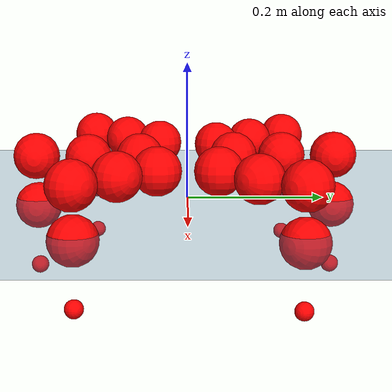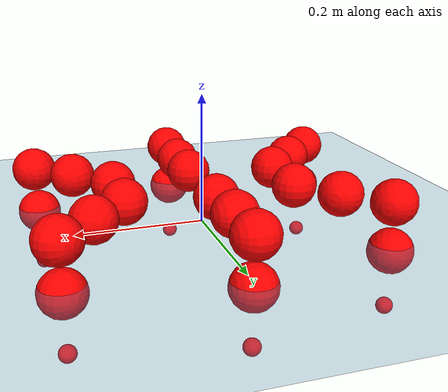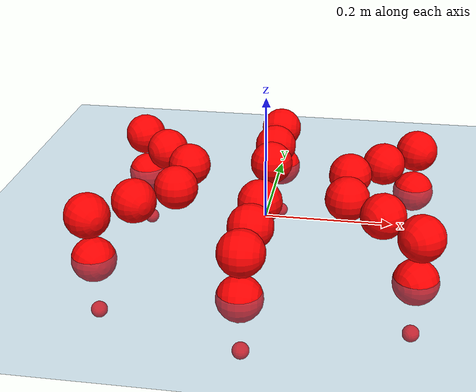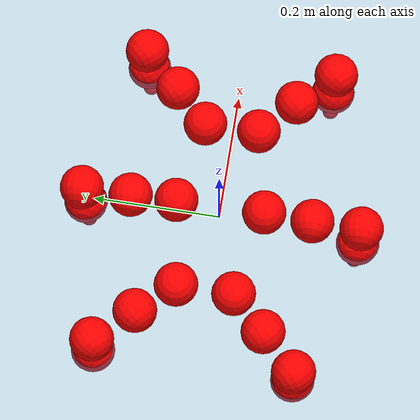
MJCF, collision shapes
<mujoco model="Golem">
  <compiler angle="radian" assetdir="assets" balanceinertia="true" inertiafromgeom="false"/>

  <option timestep="0.005" density="1.2" viscosity="2e-05"/>

  <size nkey="1"/>

  <visual>
    <quality shadowsize="8192"/>
    <map shadowclip="0.5"/>
  </visual>

  <default>
    <default class="/">
      <joint armature="0.01" damping="0.01" frictionloss="0.01"/>
      <geom contype="0" conaffinity="0" group="1" solref="-1000 -80"/>
      <site size="0.01 0.005 0.005" group="5"/>
      <general forcelimited="true" biastype="affine" gainprm="25" biasprm="0 -25 -0.5"/>
      <default class="visual">
        <geom type="mesh" group="2"/>
      </default>
      <default class="collision">
        <geom group="3"/>
      </default>
      <default class="foot">
        <geom size="0.01 0 0" condim="6" group="4" priority="1" solimp="0.015 1 0.01"/>
      </default>
      <default class="reward_collision_sphere">
        <geom group="5" rgba="1 0 0 1"/>
      </default>
    </default>
  </default>

  <asset>
    <texture type="skybox" colorspace="auto" name="//unnamed_texture_0" builtin="gradient" rgb1="0.95 0.95 0.95" rgb2="0.95 0.95 0.95" width="100" height="600"/>
    <texture type="2d" colorspace="auto" name="texplane" builtin="checker" rgb1="0.345 0.575 0.748" rgb2="0.345 0.575 0.748" markrgb="1 1 1" width="512" height="512"/>
    <material name="MatPlane" class="/" texture="texplane" texuniform="true" texrepeat="2 2" specular="0.9"/>
    <mesh name="body" class="/" file="body.stl" scale="0.001 0.001 0.001"/>
    <mesh name="coxa" class="/" file="coxa.stl" scale="0.001 0.001 0.001"/>
    <mesh name="femur" class="/" file="femur.stl" scale="0.001 0.001 0.001"/>
    <mesh name="tibia" class="/" file="tibia.stl" scale="0.001 0.001 0.001"/>
    <mesh name="tarsus" class="/" file="tarsus.stl" scale="0.001 0.001 0.001"/>
  </asset>

  <worldbody>
    <geom name="floor" class="/" size="100 100 0.125" type="plane" group="0" material="MatPlane"/>
    <light name="toplight_shadow" class="/" pos="0 0 5" dir="0.0990148 0.0990148 -0.990148" type="directional" ambient="0.04 0.04 0.04" diffuse="0.55 0.55 0.55" specular="0.12 0.12 0.12"/>
    <light name="toplight_fill" class="/" pos="0 0 5" dir="0.0990148 0.0990148 -0.990148" type="directional" castshadow="false" ambient="0.04 0.04 0.04" diffuse="0.3 0.3 0.3" specular="0.08 0.08 0.08"/>
    <body name="trunk" pos="-0.00073834 6.15526e-05 -0.00242809" quat="1 -3.18052e-05 -3.56511e-05 -2.23334e-05">
      <inertial pos="0.000478822 0.00136398 -0.00528101" quat="0.999997 -0.00041123 -0.00217938 -0.000662703" mass="2.42037" diaginertia="0.0044433 0.00203015 0.0105963"/>
      <joint name="//unnamed_joint_0" type="free"/>
      <geom name="//unnamed_geom_1" class="/" pos="0 0 0.0645617" quat="1 0 0 0" type="mesh" rgba="0.9 0.9 0.9 1" mesh="body"/>
      <site name="imu" class="/" pos="0.111181 0.000394898 0.111235" size="0.00859321"/>
      <camera name="track" class="/" pos="0 -1.44767 0" quat="0.707107 0.707107 0 0" mode="trackcom"/>
      <camera name="ego_camera" class="/" pos="0.109896 0 0.100878" quat="-0.5 -0.5 0.5 0.5"/>
      <body name="coxa_RR" pos="-0.152231 -0.0617108 0.0651803" quat="0.383177 -0.000863983 0.000809432 -0.923674">
        <inertial pos="-0.00264904 -0.000720645 0.000619695" quat="0.999944 -0.00372133 0.000352671 -0.00995064" mass="0.125548" diaginertia="0.00432513 0.00197943 0.0100578"/>
        <joint name="coxa_joint_RR" class="/" pos="0 0 0" axis="0.00197717 0.000431425 -0.999998" range="-3.13654 3.12331" armature="0.00897059" damping="0.0109263" frictionloss="0.00951233"/>
        <geom name="//unnamed_geom_2" class="/" type="mesh" rgba="0.2 0.2 0.2 1" mesh="coxa"/>
        <geom name="//unnamed_geom_3" class="reward_collision_sphere" size="0.0343728" pos="-0.0253606 0 0"/>
        <body name="femur_RR" pos="0.0494191 0.000962428 0.000224696" quat="0.499886 -0.500037 0.500098 0.499979">
          <inertial pos="-0.000425704 0.000293995 0.00235123" quat="1 -4.19782e-05 -0.000488518 0.0001887" mass="0.127676" diaginertia="0.00433065 0.00199972 0.0101866"/>
          <joint name="femur_joint_RR" class="/" pos="0 0 0" axis="-0.00949761 -0.00132252 -0.999954" stiffness="0.000325013" range="-3.15982 3.14526" armature="0.00859834" damping="0.0022366" frictionloss="0.00901001"/>
          <geom name="//unnamed_geom_4" class="/" type="mesh" rgba="0.9 0.9 0.9 1" mesh="femur"/>
          <geom name="//unnamed_geom_5" class="reward_collision_sphere" size="0.0343728"/>
          <body name="tibia_RR" pos="0.000369946 -0.0778191 3.557e-05" quat="-1.15624e-05 1 -6.78368e-06 3.68763e-05">
            <inertial pos="7.90819e-05 0.00236473 -0.00242491" quat="0.99994 0.00277737 -0.00689485 -0.00803416" mass="0.126252" diaginertia="0.00420356 0.00199388 0.0103292"/>
            <joint name="tibia_joint_RR" class="/" pos="0 0 0" axis="-0.000841842 -0.000566858 0.999999" stiffness="0.00142526" range="-3.1395 3.11125" armature="0.00845065" damping="0.00484481" frictionloss="0.00848782"/>
            <geom name="//unnamed_geom_6" class="/" type="mesh" rgba="0.2 0.2 0.2 1" mesh="tibia"/>
            <geom name="//unnamed_geom_7" class="reward_collision_sphere" size="0.0343728"/>
            <body name="tarsus_RR" pos="0.0741331 -0.00254623 -0.00265483" quat="0.999999 -0.00119324 -1.5926e-05 9.10301e-05">
              <inertial pos="0.0492488 -0.00214293 -0.000440541" quat="0.497963 0.503668 0.498234 0.500115" mass="0.123981" diaginertia="0.00433879 0.00204868 0.0105778"/>
              <joint name="tarsus_joint_RR" class="/" pos="0 0 0" axis="-0.00271654 0.00297519 0.999992" range="-3.13611 3.13543" armature="0.00836567" damping="0" frictionloss="0.00885501"/>
              <geom name="//unnamed_geom_8" class="/" type="mesh" rgba="0.9 0.9 0.9 1" mesh="tarsus"/>
              <geom name="foot_1" class="foot" size="0.00853042" pos="0.0946796 0 0" quat="0 -0.707107 0 0.707107"/>
              <geom name="//unnamed_geom_10" class="reward_collision_sphere" size="0.0343728"/>
              <geom name="//unnamed_geom_11" class="reward_collision_sphere" size="0.0128898" pos="0.0908755 0 0"/>
              <site name="foot_1" class="foot" pos="0.0946796 0 0" quat="0 -0.707107 0 0.707107" size="0.00859321"/>
            </body>
          </body>
        </body>
      </body>
      <body name="coxa_RM" pos="0.00174278 -0.0958389 0.0640073" quat="0.707094 4.57338e-05 4.69496e-05 -0.70712">
        <inertial pos="0.000145493 -0.00069117 -0.00232696" quat="0.999987 -0.00397995 0.00279778 -0.00148935" mass="0.124902" diaginertia="0.0041487 0.00189499 0.0101653"/>
        <joint name="coxa_joint_RM" class="/" pos="0 0 0" axis="-0.00287478 0.000151593 -0.999996" range="-3.13609 3.14887" armature="0.00867596" damping="0.0132095" frictionloss="0.00895608"/>
        <geom name="//unnamed_geom_12" class="/" type="mesh" rgba="0.2 0.2 0.2 1" mesh="coxa"/>
        <geom name="//unnamed_geom_13" class="reward_collision_sphere" size="0.0343728" pos="-0.0253606 0 0"/>
        <body name="femur_RM" pos="0.0504587 -0.00200746 -0.0011076" quat="0.499131 -0.500283 0.499846 0.500738">
          <inertial pos="0.000885481 -0.00107853 0.000335272" quat="0.999922 -0.00606516 -0.00962364 0.00517278" mass="0.125088" diaginertia="0.00443189 0.00198969 0.0103582"/>
          <joint name="femur_joint_RM" class="/" pos="0 0 0" axis="0.00388141 0.00106889 -0.999992" stiffness="0.000446166" range="-3.17997 3.17975" armature="0.00968558" damping="0.023901" frictionloss="0.00835771"/>
          <geom name="//unnamed_geom_14" class="/" type="mesh" rgba="0.9 0.9 0.9 1" mesh="femur"/>
          <geom name="//unnamed_geom_15" class="reward_collision_sphere" size="0.0343728"/>
          <body name="tibia_RM" pos="-0.00169438 -0.076886 -0.000799645" quat="-8.00322e-05 1 -0.000136484 0.000119835">
            <inertial pos="0.000892629 0.000374472 -0.00220368" quat="0.999955 5.99841e-06 0.00408119 -0.00861431" mass="0.120088" diaginertia="0.00417122 0.00193655 0.0104787"/>
            <joint name="tibia_joint_RM" class="/" pos="0 0 0" axis="-0.00219552 0.00468244 0.999987" stiffness="0.00305618" range="-3.17803 3.09836" armature="0.00774522" damping="0" frictionloss="0.00896403"/>
            <geom name="//unnamed_geom_16" class="/" type="mesh" rgba="0.2 0.2 0.2 1" mesh="tibia"/>
            <geom name="//unnamed_geom_17" class="reward_collision_sphere" size="0.0343728"/>
            <body name="tarsus_RM" pos="0.0746049 -0.00140939 0.00314945" quat="1 9.97015e-05 6.93842e-05 -0.000111047">
              <inertial pos="0.0512505 0.000449392 0.000678521" quat="0.497861 0.494874 0.50408 0.503128" mass="0.127179" diaginertia="0.00437212 0.00198713 0.0105856"/>
              <joint name="tarsus_joint_RM" class="/" pos="0 0 0" axis="-0.00197809 0.0025768 0.999995" range="-3.13245 3.19072" armature="0.00875328" damping="0" frictionloss="0.00894337"/>
              <geom name="//unnamed_geom_18" class="/" type="mesh" rgba="0.9 0.9 0.9 1" mesh="tarsus"/>
              <geom name="foot_2" class="foot" size="0.00788532" pos="0.0946796 0 0" quat="0 -0.707107 0 0.707107"/>
              <geom name="//unnamed_geom_20" class="reward_collision_sphere" size="0.0343728"/>
              <geom name="//unnamed_geom_21" class="reward_collision_sphere" size="0.0128898" pos="0.0908755 0 0"/>
              <site name="foot_2" class="foot" pos="0.0946796 0 0" quat="0 -0.707107 0 0.707107" size="0.00859321"/>
            </body>
          </body>
        </body>
      </body>
      <body name="coxa_RF" pos="0.149428 -0.0599997 0.0643956" quat="0.924287 0.000579143 -0.000115223 -0.381698">
        <inertial pos="0.00242671 -0.00222128 0.00116719" quat="0.999987 0.00112472 -0.000819648 0.00481289" mass="0.127251" diaginertia="0.00441703 0.0019733 0.0104768"/>
        <joint name="coxa_joint_RF" class="/" pos="0 0 0" axis="-0.00118685 -0.00732127 -0.999972" range="-3.14019 3.1519" armature="0.00869397" damping="0" frictionloss="0.00885176"/>
        <geom name="//unnamed_geom_22" class="/" type="mesh" rgba="0.2 0.2 0.2 1" mesh="coxa"/>
        <geom name="//unnamed_geom_23" class="reward_collision_sphere" size="0.0343728" pos="-0.0253606 0 0"/>
        <body name="femur_RF" pos="0.0505497 0.00225666 0.00231978" quat="0.499191 -0.500562 0.500787 0.499457">
          <inertial pos="-0.000262269 -0.000136489 0.0004037" quat="0.999997 -0.00206595 0.000901926 -0.00106699" mass="0.127427" diaginertia="0.00432501 0.00198649 0.0104124"/>
          <joint name="femur_joint_RF" class="/" pos="0 0 0" axis="0.00439828 0.00324723 -0.999985" range="-3.13869 3.14546" armature="0.00877466" damping="0.0124222" frictionloss="0.00837964"/>
          <geom name="//unnamed_geom_24" class="/" type="mesh" rgba="0.9 0.9 0.9 1" mesh="femur"/>
          <geom name="//unnamed_geom_25" class="reward_collision_sphere" size="0.0343728"/>
          <body name="tibia_RF" pos="0.0012427 -0.0778881 0.000147604" quat="0.000290393 1 -0.000295515 0.000280424">
            <inertial pos="-0.000430183 -0.00167584 -0.000428961" quat="0.999997 0.00156081 0.00163286 0.000496207" mass="0.122271" diaginertia="0.00418997 0.0019093 0.0104089"/>
            <joint name="tibia_joint_RF" class="/" pos="0 0 0" axis="0.00409843 -0.000374342 0.999992" stiffness="0.00198197" range="-3.13102 3.09756" armature="0.0085479" damping="0" frictionloss="0.00862819"/>
            <geom name="//unnamed_geom_26" class="/" type="mesh" rgba="0.2 0.2 0.2 1" mesh="tibia"/>
            <geom name="//unnamed_geom_27" class="reward_collision_sphere" size="0.0343728"/>
            <body name="tarsus_RF" pos="0.0725718 -0.00283105 0.00122373" quat="1 0.000106053 0.000569659 -0.00012459">
              <inertial pos="0.05 0.000689641 -0.00109028" quat="0.499602 0.500219 0.499943 0.500236" mass="0.129044" diaginertia="0.00431842 0.00205778 0.0105835"/>
              <joint name="tarsus_joint_RF" class="/" pos="0 0 0" axis="-0.00210599 -0.00262927 0.999994" range="-3.14688 3.15801" armature="0.00819559" damping="0" frictionloss="0.00875221"/>
              <geom name="//unnamed_geom_28" class="/" type="mesh" rgba="0.9 0.9 0.9 1" mesh="tarsus"/>
              <geom name="foot_3" class="foot" size="0.00833584" pos="0.0946796 0 0" quat="0 -0.707107 0 0.707107"/>
              <geom name="//unnamed_geom_30" class="reward_collision_sphere" size="0.0343728"/>
              <geom name="//unnamed_geom_31" class="reward_collision_sphere" size="0.0128898" pos="0.0908755 0 0"/>
              <site name="foot_3" class="foot" pos="0.0946796 0 0" quat="0 -0.707107 0 0.707107" size="0.00859321"/>
            </body>
          </body>
        </body>
      </body>
      <body name="coxa_LR" pos="-0.150993 0.0640453 0.0627954" quat="0.382664 1.70459e-05 -3.06459e-05 0.923888">
        <inertial pos="0.000335233 0.000585665 -0.00121381" quat="0.999978 0.00628796 0.00123705 -0.00179467" mass="0.123681" diaginertia="0.00417381 0.00196631 0.0101478"/>
        <joint name="coxa_joint_LR" class="/" pos="0 0 0" axis="0.00070175 0.00429231 -0.999991" stiffness="0.00245776" range="-3.13383 3.14939" armature="0.00832022" damping="0.0162119" frictionloss="0.00931304"/>
        <geom name="//unnamed_geom_32" class="/" type="mesh" rgba="0.2 0.2 0.2 1" mesh="coxa"/>
        <geom name="//unnamed_geom_33" class="reward_collision_sphere" size="0.0343728" pos="-0.0253606 0 0"/>
        <body name="femur_LR" pos="0.0496609 -0.00364594 -0.000308879" quat="0.500194 -0.500241 0.499528 0.500038">
          <inertial pos="-0.000682819 0.000179135 -0.00274769" quat="1 -0.000451777 4.30792e-05 0.000571429" mass="0.123567" diaginertia="0.00419527 0.0019301 0.0101239"/>
          <joint name="femur_joint_LR" class="/" pos="0 0 0" axis="-0.0124952 0.0030222 0.999917" range="-3.14624 3.13711" armature="0.00893769" damping="0.00948012" frictionloss="0.00871985"/>
          <geom name="//unnamed_geom_34" class="/" type="mesh" rgba="0.9 0.9 0.9 1" mesh="femur"/>
          <geom name="//unnamed_geom_35" class="reward_collision_sphere" size="0.0343728"/>
          <body name="tibia_LR" pos="-0.000860882 -0.0792136 -0.00206395" quat="-0.000121498 1 9.55635e-05 6.07229e-05">
            <inertial pos="-0.000196608 0.00233216 -0.000568682" quat="0.999988 -2.32174e-05 -0.00038699 -0.00498272" mass="0.127694" diaginertia="0.00421575 0.00200268 0.0107877"/>
            <joint name="tibia_joint_LR" class="/" pos="0 0 0" axis="-0.0121219 0.00157363 -0.999925" range="-3.10243 3.08646" armature="0.00971294" damping="0" frictionloss="0.00908804"/>
            <geom name="//unnamed_geom_36" class="/" type="mesh" rgba="0.2 0.2 0.2 1" mesh="tibia"/>
            <geom name="//unnamed_geom_37" class="reward_collision_sphere" size="0.0343728"/>
            <body name="tarsus_LR" pos="0.0754211 0.00148066 0.00123457" quat="1 -0.000530228 5.31372e-05 -0.000119227">
              <inertial pos="0.0536256 0.00077287 -0.00243514" quat="0.499911 0.499855 0.499886 0.500348" mass="0.126858" diaginertia="0.0043575 0.00199722 0.0103203"/>
              <joint name="tarsus_joint_LR" class="/" pos="0 0 0" axis="0.000345651 -0.00154118 -0.999999" range="-3.12576 3.13151" armature="0.00793754" damping="0.0135323" frictionloss="0.00854872"/>
              <geom name="//unnamed_geom_38" class="/" type="mesh" rgba="0.9 0.9 0.9 1" mesh="tarsus"/>
              <geom name="foot_4" class="foot" size="0.00868815" pos="0.0946796 0 0" quat="0.707107 0 -0.707107 0"/>
              <geom name="//unnamed_geom_40" class="reward_collision_sphere" size="0.0343728"/>
              <geom name="//unnamed_geom_41" class="reward_collision_sphere" size="0.0128898" pos="0.0908755 0 0"/>
              <site name="foot_4" class="foot" pos="0.0946796 0 0" quat="0.707107 0 -0.707107 0" size="0.00859321"/>
            </body>
          </body>
        </body>
      </body>
      <body name="coxa_LM" pos="-0.00010769 0.0927222 0.0656313" quat="0.707407 -4.85803e-05 1.23753e-05 0.706807">
        <inertial pos="0.000359357 -0.00238629 0.00268894" quat="1 -6.35553e-05 1.17586e-05 0.000339287" mass="0.129544" diaginertia="0.00441391 0.00200937 0.0106474"/>
        <joint name="coxa_joint_LM" class="/" pos="0 0 0" axis="-0.00636799 0.00766722 -0.99995" range="-3.14903 3.15534" armature="0.00751624" damping="0.00727808" frictionloss="0.00853036"/>
        <geom name="//unnamed_geom_42" class="/" type="mesh" rgba="0.2 0.2 0.2 1" mesh="coxa"/>
        <geom name="//unnamed_geom_43" class="reward_collision_sphere" size="0.0343728" pos="-0.0253606 0 0"/>
        <body name="femur_LM" pos="0.0461873 0.00271896 -8.18236e-05" quat="0.50004 -0.499982 0.499977 0.500001">
          <inertial pos="-0.00258947 0.000476499 -0.000997426" quat="0.999997 0.00065496 -0.00105352 -0.00232571" mass="0.122393" diaginertia="0.00423635 0.00193596 0.00999515"/>
          <joint name="femur_joint_LM" class="/" pos="0 0 0" axis="0.0138394 -0.000731747 0.999904" stiffness="0.00182292" range="-3.13651 3.13484" armature="0.00887308" damping="0.0059325" frictionloss="0.00935024"/>
          <geom name="//unnamed_geom_44" class="/" type="mesh" rgba="0.9 0.9 0.9 1" mesh="femur"/>
          <geom name="//unnamed_geom_45" class="reward_collision_sphere" size="0.0343728"/>
          <body name="tibia_LM" pos="-0.000530999 -0.0766543 -0.000100843" quat="9.06929e-05 1 -0.000453728 -0.000228816">
            <inertial pos="-0.00112338 -7.53261e-05 0.00154697" quat="0.999961 0.00659768 0.00587377 -0.000453214" mass="0.123245" diaginertia="0.00427648 0.00198787 0.0102066"/>
            <joint name="tibia_joint_LM" class="/" pos="0 0 0" axis="-0.00415638 0.00310471 -0.999987" range="-3.14151 3.18405" armature="0.00809474" damping="0.00146233" frictionloss="0.00845003"/>
            <geom name="//unnamed_geom_46" class="/" type="mesh" rgba="0.2 0.2 0.2 1" mesh="tibia"/>
            <geom name="//unnamed_geom_47" class="reward_collision_sphere" size="0.0343728"/>
            <body name="tarsus_LM" pos="0.0743924 -0.00209268 -0.00017451" quat="1 -1.86355e-05 3.51601e-08 3.90949e-06">
              <inertial pos="0.0532391 0.00157079 0.000995289" quat="0.499983 0.499665 0.500185 0.500167" mass="0.126363" diaginertia="0.00437767 0.00200987 0.0105672"/>
              <joint name="tarsus_joint_LM" class="/" pos="0 0 0" axis="-0.00221344 0.00199816 -0.999996" range="-3.14919 3.12867" armature="0.00864113" damping="0" frictionloss="0.0090455"/>
              <geom name="//unnamed_geom_48" class="/" type="mesh" rgba="0.9 0.9 0.9 1" mesh="tarsus"/>
              <geom name="foot_5" class="foot" size="0.00868541" pos="0.0946796 0 0" quat="0.707107 0 -0.707107 0"/>
              <geom name="//unnamed_geom_50" class="reward_collision_sphere" size="0.0343728"/>
              <geom name="//unnamed_geom_51" class="reward_collision_sphere" size="0.0128898" pos="0.0908755 0 0"/>
              <site name="foot_5" class="foot" pos="0.0946796 0 0" quat="0.707107 0 -0.707107 0" size="0.00859321"/>
            </body>
          </body>
        </body>
      </body>
      <body name="coxa_LF" pos="0.148909 0.0605785 0.0641087" quat="0.923824 0.000271144 -0.000470719 0.382818">
        <inertial pos="0.00190516 -0.00054361 -0.0006493" quat="0.999925 -0.00954148 -0.00763653 -0.0007774" mass="0.127591" diaginertia="0.00445165 0.0019585 0.0104466"/>
        <joint name="coxa_joint_LF" class="/" pos="0 0 0" axis="-0.000877465 0.00340418 -0.999994" range="-3.14734 3.09333" armature="0.00852466" damping="0.0128378" frictionloss="0.00842342"/>
        <geom name="//unnamed_geom_52" class="/" type="mesh" rgba="0.2 0.2 0.2 1" mesh="coxa"/>
        <geom name="//unnamed_geom_53" class="reward_collision_sphere" size="0.0343728" pos="-0.0253606 0 0"/>
        <body name="femur_LF" pos="0.048328 2.46864e-05 -0.00142995" quat="0.499744 -0.499755 0.500474 0.500027">
          <inertial pos="-0.0020179 0.00116514 -0.000302294" quat="0.999996 0.00231496 0.00126504 -0.00070644" mass="0.128508" diaginertia="0.00421227 0.00199841 0.0104206"/>
          <joint name="femur_joint_LF" class="/" pos="0 0 0" axis="-0.0130603 0.00243004 0.999912" range="-3.18605 3.14895" armature="0.00857764" damping="0" frictionloss="0.00856874"/>
          <geom name="//unnamed_geom_54" class="/" type="mesh" rgba="0.9 0.9 0.9 1" mesh="femur"/>
          <geom name="//unnamed_geom_55" class="reward_collision_sphere" size="0.0343728"/>
          <body name="tibia_LF" pos="-0.00120871 -0.0789932 0.00284463" quat="0.000549563 1 0.000166379 -0.000410208">
            <inertial pos="-0.00195458 0.000495985 0.000242988" quat="0.999915 0.00804757 0.00529381 -0.00877897" mass="0.131013" diaginertia="0.00426103 0.0019864 0.01057"/>
            <joint name="tibia_joint_LF" class="/" pos="0 0 0" axis="0.00151196 -0.00120454 -0.999998" range="-3.14252 3.1321" armature="0.00877526" damping="0.00367712" frictionloss="0.00887416"/>
            <geom name="//unnamed_geom_56" class="/" type="mesh" rgba="0.2 0.2 0.2 1" mesh="tibia"/>
            <geom name="//unnamed_geom_57" class="reward_collision_sphere" size="0.0343728"/>
            <body name="tarsus_LF" pos="0.0750835 -0.00174623 0.000447658" quat="1 2.35632e-05 -7.34337e-05 -1.6509e-05">
              <inertial pos="0.0505265 0.000915357 -0.00169957" quat="0.497246 0.502888 0.497603 0.502237" mass="0.119527" diaginertia="0.00417539 0.00192111 0.0100495"/>
              <joint name="tarsus_joint_LF" class="/" pos="0 0 0" axis="5.70112e-06 -1.49979e-05 -1" range="-3.11833 3.14128" armature="0.00863526" damping="0.0220994" frictionloss="0.00878965"/>
              <geom name="//unnamed_geom_58" class="/" type="mesh" rgba="0.9 0.9 0.9 1" mesh="tarsus"/>
              <geom name="foot_6" class="foot" size="0.00897983" pos="0.0946796 0 0" quat="0.707107 0 -0.707107 0"/>
              <geom name="//unnamed_geom_60" class="reward_collision_sphere" size="0.0343728"/>
              <geom name="//unnamed_geom_61" class="reward_collision_sphere" size="0.0128898" pos="0.0908755 0 0"/>
              <site name="foot_6" class="foot" pos="0.0946796 0 0" quat="0.707107 0 -0.707107 0" size="0.00859321"/>
            </body>
          </body>
        </body>
      </body>
    </body>
  </worldbody>

  <contact>
    <pair class="/" geom1="floor" geom2="foot_1" name="//unnamed_contact_0"/>
    <pair class="/" geom1="floor" geom2="foot_2" name="//unnamed_contact_1"/>
    <pair class="/" geom1="floor" geom2="foot_3" name="//unnamed_contact_2"/>
    <pair class="/" geom1="floor" geom2="foot_4" name="//unnamed_contact_3"/>
    <pair class="/" geom1="floor" geom2="foot_5" name="//unnamed_contact_4"/>
    <pair class="/" geom1="floor" geom2="foot_6" name="//unnamed_contact_5"/>
  </contact>

  <actuator>
    <general name="coxa_joint_RR" class="/" joint="coxa_joint_RR" forcerange="-6.16554 6.16554" gainprm="21.0603" biasprm="0 -21.0603 -0.458146"/>
    <general name="femur_joint_RR" class="/" joint="femur_joint_RR" forcerange="-6.47388 6.47388" gainprm="21.0603" biasprm="0 -21.0603 -0.458146"/>
    <general name="tibia_joint_RR" class="/" joint="tibia_joint_RR" forcerange="-5.76693 5.76693" gainprm="21.0603" biasprm="0 -21.0603 -0.458146"/>
    <general name="tarsus_joint_RR" class="/" joint="tarsus_joint_RR" forcerange="-6.12782 6.12782" gainprm="21.0603" biasprm="0 -21.0603 -0.458146"/>
    <general name="coxa_joint_RM" class="/" joint="coxa_joint_RM" forcerange="-6.8854 6.8854" gainprm="21.0603" biasprm="0 -21.0603 -0.458146"/>
    <general name="femur_joint_RM" class="/" joint="femur_joint_RM" forcerange="-6.14576 6.14576" gainprm="21.0603" biasprm="0 -21.0603 -0.458146"/>
    <general name="tibia_joint_RM" class="/" joint="tibia_joint_RM" forcerange="-6.15183 6.15183" gainprm="21.0603" biasprm="0 -21.0603 -0.458146"/>
    <general name="tarsus_joint_RM" class="/" joint="tarsus_joint_RM" forcerange="-5.76213 5.76213" gainprm="21.0603" biasprm="0 -21.0603 -0.458146"/>
    <general name="coxa_joint_RF" class="/" joint="coxa_joint_RF" forcerange="-6.72457 6.72457" gainprm="21.0603" biasprm="0 -21.0603 -0.458146"/>
    <general name="femur_joint_RF" class="/" joint="femur_joint_RF" forcerange="-6.28839 6.28839" gainprm="21.0603" biasprm="0 -21.0603 -0.458146"/>
    <general name="tibia_joint_RF" class="/" joint="tibia_joint_RF" forcerange="-6.2261 6.2261" gainprm="21.0603" biasprm="0 -21.0603 -0.458146"/>
    <general name="tarsus_joint_RF" class="/" joint="tarsus_joint_RF" forcerange="-6.25942 6.25942" gainprm="21.0603" biasprm="0 -21.0603 -0.458146"/>
    <general name="coxa_joint_LR" class="/" joint="coxa_joint_LR" forcerange="-6.84396 6.84396" gainprm="21.0603" biasprm="0 -21.0603 -0.458146"/>
    <general name="femur_joint_LR" class="/" joint="femur_joint_LR" forcerange="-6.2912 6.2912" gainprm="21.0603" biasprm="0 -21.0603 -0.458146"/>
    <general name="tibia_joint_LR" class="/" joint="tibia_joint_LR" forcerange="-6.62781 6.62781" gainprm="21.0603" biasprm="0 -21.0603 -0.458146"/>
    <general name="tarsus_joint_LR" class="/" joint="tarsus_joint_LR" forcerange="-6.86791 6.86791" gainprm="21.0603" biasprm="0 -21.0603 -0.458146"/>
    <general name="coxa_joint_LM" class="/" joint="coxa_joint_LM" forcerange="-5.78413 5.78413" gainprm="21.0603" biasprm="0 -21.0603 -0.458146"/>
    <general name="femur_joint_LM" class="/" joint="femur_joint_LM" forcerange="-6.04281 6.04281" gainprm="21.0603" biasprm="0 -21.0603 -0.458146"/>
    <general name="tibia_joint_LM" class="/" joint="tibia_joint_LM" forcerange="-6.82236 6.82236" gainprm="21.0603" biasprm="0 -21.0603 -0.458146"/>
    <general name="tarsus_joint_LM" class="/" joint="tarsus_joint_LM" forcerange="-6.88679 6.88679" gainprm="21.0603" biasprm="0 -21.0603 -0.458146"/>
    <general name="coxa_joint_LF" class="/" joint="coxa_joint_LF" forcerange="-5.94413 5.94413" gainprm="21.0603" biasprm="0 -21.0603 -0.458146"/>
    <general name="femur_joint_LF" class="/" joint="femur_joint_LF" forcerange="-5.97707 5.97707" gainprm="21.0603" biasprm="0 -21.0603 -0.458146"/>
    <general name="tibia_joint_LF" class="/" joint="tibia_joint_LF" forcerange="-6.49316 6.49316" gainprm="21.0603" biasprm="0 -21.0603 -0.458146"/>
    <general name="tarsus_joint_LF" class="/" joint="tarsus_joint_LF" forcerange="-6.30439 6.30439" gainprm="21.0603" biasprm="0 -21.0603 -0.458146"/>
  </actuator>

  <sensor>
    <gyro site="imu" name="imu_angular_velocity"/>
    <velocimeter site="imu" name="imu_linear_velocity"/>
    <framelinvel objtype="site" objname="foot_1" name="foot_1_global_linear_velocity"/>
    <framelinvel objtype="site" objname="foot_2" name="foot_2_global_linear_velocity"/>
    <framelinvel objtype="site" objname="foot_3" name="foot_3_global_linear_velocity"/>
    <framelinvel objtype="site" objname="foot_4" name="foot_4_global_linear_velocity"/>
    <framelinvel objtype="site" objname="foot_5" name="foot_5_global_linear_velocity"/>
    <framelinvel objtype="site" objname="foot_6" name="foot_6_global_linear_velocity"/>
  </sensor>

  <keyframe>
    <key name="home" qpos="0 0 0.1457 1 0 0 0 0 0 0 0 0 0 0 0 0 0 0 0 0 0 0 0 0 0 0 0 0 0 0 0"/>
  </keyframe>
</mujoco>
